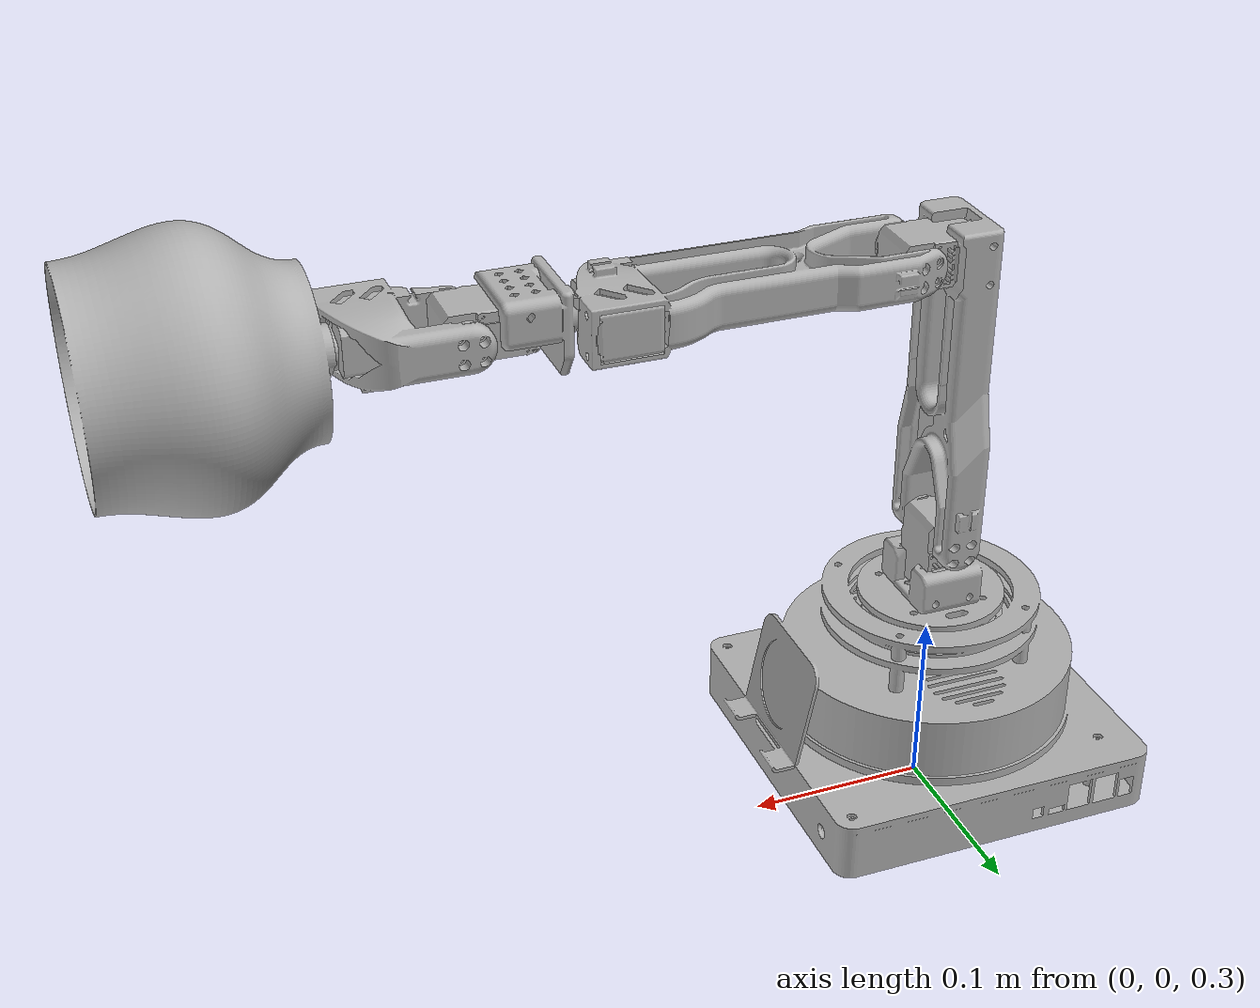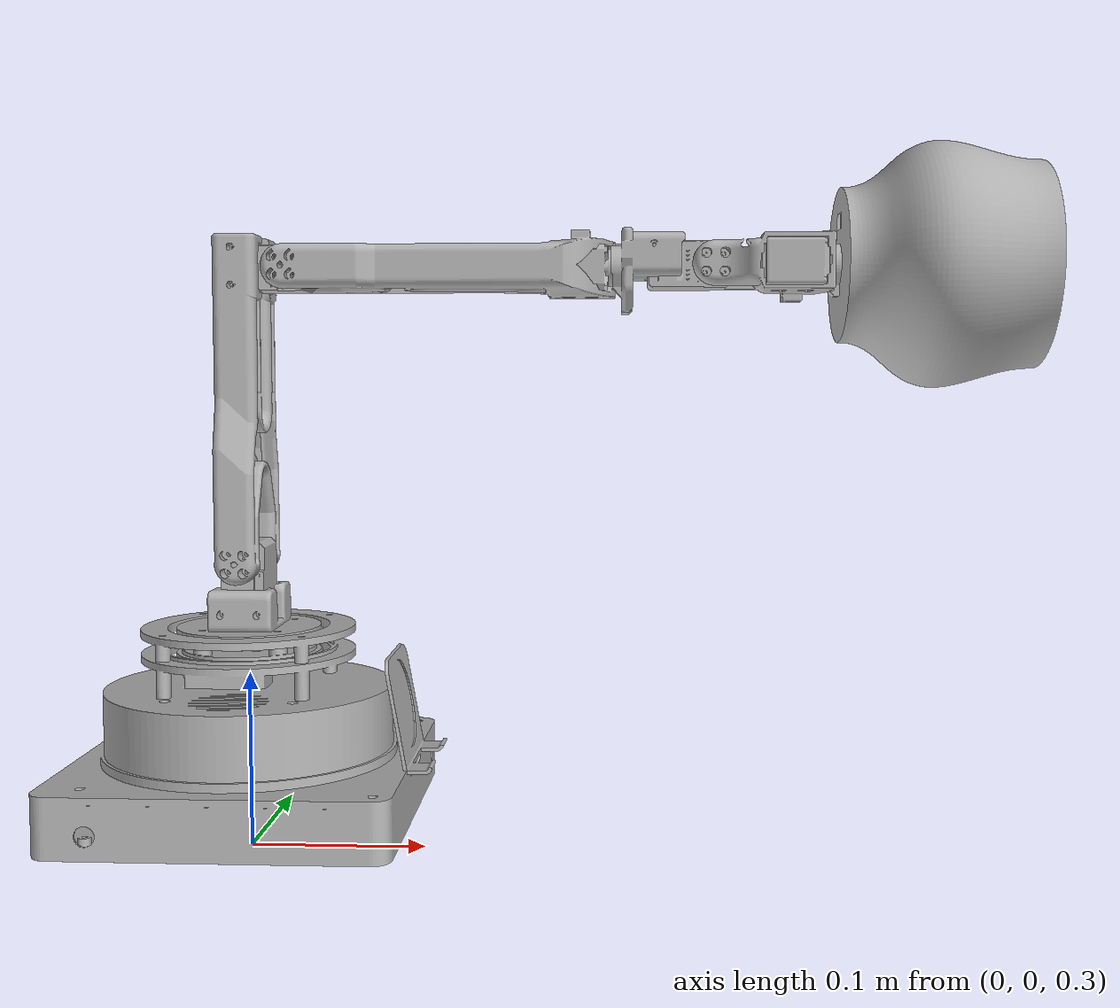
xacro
<?xml version="1.0" ?>
<robot name="my_arm" xmlns:xacro="http://www.ros.org/wiki/xacro">

  <xacro:include filename="$(find my_arm_description)/urdf/gazebo/my_arm.gazebo" />
  <xacro:include filename="$(find my_arm_description)/urdf/control/my_arm.ros2control" />
  <xacro:include filename="$(find my_arm_description)/urdf/core/my_arm.xacro" />
  <xacro:include filename="$(find my_arm_description)/urdf/perception/camera.xacro" />

  <!-- Gazebo ros2_control 插件 -->
  <gazebo>
    <plugin filename="libgz_ros2_control-system.so" name="gz_ros2_control::GazeboSimROS2ControlPlugin">
      <parameters>$(find my_arm_description)/config/gazebo_control/controllers.yaml</parameters>
      <ros>
        <remapping>/robot_description:=/robot_description</remapping>
      </ros>
      <position_proportional_gain>500.0</position_proportional_gain>
    </plugin>
  </gazebo>

  <!-- 在末端添加相机 -->
  <xacro:add_camera parent_link="lamp_link_1" xyz="0.01 0.0 0.005" rpy="0 0 0"/>

</robot>

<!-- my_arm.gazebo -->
<robot name="my_arm" xmlns:xacro="http://www.ros.org/wiki/xacro" >

<xacro:property name="body_color" value="Gazebo/Silver" />

<gazebo reference="base_link">
  <material>${body_color}</material>
  <mu1>0.2</mu1>
  <mu2>0.2</mu2>
  <self_collide>true</self_collide>
  <gravity>true</gravity>
</gazebo>

<gazebo reference="arm_1_link_1">
  <material>${body_color}</material>
  <mu1>0.2</mu1>
  <mu2>0.2</mu2>
  <self_collide>true</self_collide>
</gazebo>

<gazebo reference="servo_3_link_1">
  <material>${body_color}</material>
  <mu1>0.2</mu1>
  <mu2>0.2</mu2>
  <self_collide>true</self_collide>
</gazebo>

<gazebo reference="arm_3_link_1">
  <material>${body_color}</material>
  <mu1>0.2</mu1>
  <mu2>0.2</mu2>
  <self_collide>true</self_collide>
</gazebo>

<gazebo reference="servo_4_link_1">
  <material>${body_color}</material>
  <mu1>0.2</mu1>
  <mu2>0.2</mu2>
  <self_collide>true</self_collide>
</gazebo>

<gazebo reference="arm_4_link_1">
  <material>${body_color}</material>
  <mu1>0.2</mu1>
  <mu2>0.2</mu2>
  <self_collide>true</self_collide>
</gazebo>

<gazebo reference="servo_5_link_1">
  <material>${body_color}</material>
  <mu1>0.2</mu1>
  <mu2>0.2</mu2>
  <self_collide>true</self_collide>
</gazebo>

<gazebo reference="arm_5_link_1">
  <material>${body_color}</material>
  <mu1>0.2</mu1>
  <mu2>0.2</mu2>
  <self_collide>true</self_collide>
</gazebo>

<gazebo reference="servo_6_link_1">
  <material>${body_color}</material>
  <mu1>0.2</mu1>
  <mu2>0.2</mu2>
  <self_collide>true</self_collide>
</gazebo>

<gazebo reference="lamp_link_1">
  <material>${body_color}</material>
  <mu1>0.2</mu1>
  <mu2>0.2</mu2>
  <self_collide>true</self_collide>
</gazebo>

<gazebo reference="servo_2_link_2">
  <material>${body_color}</material>
  <mu1>0.2</mu1>
  <mu2>0.2</mu2>
  <self_collide>true</self_collide>
</gazebo>

<gazebo reference="arm_2_link_1">
  <material>${body_color}</material>
  <mu1>0.2</mu1>
  <mu2>0.2</mu2>
  <self_collide>true</self_collide>
</gazebo>

</robot>

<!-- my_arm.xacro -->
<robot name="my_arm" xmlns:xacro="http://www.ros.org/wiki/xacro">
<xacro:include filename="$(find my_arm_description)/urdf/core/materials.xacro" />
<!-- ========== 虚拟基座 ========== -->
<link name="world"/>

<joint name="base_to_world" type="fixed">
  <parent link="world"/>
  <child link="base_link"/>
  <origin xyz="0 0 0.32" rpy="0 0 0"/>
</joint>

<link name="base_link">
  <inertial>
    <origin xyz="0.0008464787530113904 -0.0002376902938994468 0.04677602289512804" rpy="0 0 0"/>
    <mass value="2.9601256922876837"/>
    <inertia ixx="0.011312" iyy="0.011909" izz="0.017539" ixy="-4e-05" iyz="-2.8e-05" ixz="7.4e-05"/>
  </inertial>
  <visual>
    <origin xyz="0 0 0" rpy="0 0 0"/>
    <geometry>
      <mesh filename="file:///home/lai/Desktop/ros2_ws/src/my_arm_description/meshes/base_link.stl" scale="0.001 0.001 0.001"/>
    </geometry>
    <material name="silver"/>
  </visual>
  <collision>
    <origin xyz="0 0 0" rpy="0 0 0"/>
    <geometry>
      <mesh filename="file:///home/lai/Desktop/ros2_ws/src/my_arm_description/meshes/base_link.stl" scale="0.001 0.001 0.001"/>
    </geometry>
  </collision>
</link>

<link name="arm_1_link_1">
  <inertial>
    <origin xyz="0.012623151298250049 -0.0003158130747682431 -0.07225102113341529" rpy="0 0 0"/>
    <mass value="0.48146371205984473"/>
    <inertia ixx="0.000245" iyy="0.000219" izz="0.000347" ixy="-0.0" iyz="1e-06" ixz="-1e-06"/>
  </inertial>
  <visual>
    <origin xyz="0.01251 0.0001 -0.17696" rpy="0 0 0"/>
    <geometry>
      <mesh filename="file:///home/lai/Desktop/ros2_ws/src/my_arm_description/meshes/arm_1_link_1.stl" scale="0.001 0.001 0.001"/>
    </geometry>
    <material name="silver"/>
  </visual>
  <collision>
    <origin xyz="0.01251 0.0001 -0.17696" rpy="0 0 0"/>
    <geometry>
      <mesh filename="file:///home/lai/Desktop/ros2_ws/src/my_arm_description/meshes/arm_1_link_1.stl" scale="0.001 0.001 0.001"/>
    </geometry>
  </collision>
</link>

<link name="servo_3_link_1">
  <inertial>
    <origin xyz="0.02239902764015798 -0.00012706497809415707 -2.1755726442584944e-08" rpy="0 0 0"/>
    <mass value="0.2843033821982282"/>
    <inertia ixx="4e-05" iyy="6.2e-05" izz="7.3e-05" ixy="1e-06" iyz="-0.0" ixz="0.0"/>
  </inertial>
  <visual>
    <origin xyz="0.0072 0.0008 -0.3086" rpy="0 0 0"/>
    <geometry>
      <mesh filename="file:///home/lai/Desktop/ros2_ws/src/my_arm_description/meshes/servo_3_link_1.stl" scale="0.001 0.001 0.001"/>
    </geometry>
    <material name="silver"/>
  </visual>
  <collision>
    <origin xyz="0.0072 0.0008 -0.3086" rpy="0 0 0"/>
    <geometry>
      <mesh filename="file:///home/lai/Desktop/ros2_ws/src/my_arm_description/meshes/servo_3_link_1.stl" scale="0.001 0.001 0.001"/>
    </geometry>
  </collision>
</link>

<link name="arm_3_link_1">
  <inertial>
    <origin xyz="0.09160800621927975 -0.018527194341208024 0.00017998424453308237" rpy="0 0 0"/>
    <mass value="0.8614146702314018"/>
    <inertia ixx="0.000403" iyy="0.00217" izz="0.002485" ixy="-8.3e-05" iyz="-0.0" ixz="-8e-06"/>
  </inertial>
  <visual>
    <origin xyz="-0.028 -0.0175 -0.3086" rpy="0 0 0"/>
    <geometry>
      <mesh filename="file:///home/lai/Desktop/ros2_ws/src/my_arm_description/meshes/arm_3_link_1.stl" scale="0.001 0.001 0.001"/>
    </geometry>
    <material name="silver"/>
  </visual>
  <collision>
    <origin xyz="-0.028 -0.0175 -0.3086" rpy="0 0 0"/>
    <geometry>
      <mesh filename="file:///home/lai/Desktop/ros2_ws/src/my_arm_description/meshes/arm_3_link_1.stl" scale="0.001 0.001 0.001"/>
    </geometry>
  </collision>
</link>

<link name="servo_4_link_1">
  <inertial>
    <origin xyz="0.33571890838818963 -0.17555726528762458 0.012433978227253617" rpy="0 0 0"/>
    <mass value="0.2843033821982282"/>
    <inertia ixx="6.2e-05" iyy="4e-05" izz="7.3e-05" ixy="1e-06" iyz="0.0" ixz="-0.0"/>
  </inertial>
  <visual>
    <origin xyz="0.1481 -0.186792 -0.296366" rpy="0 0 0"/>
    <geometry>
      <mesh filename="file:///home/lai/Desktop/ros2_ws/src/my_arm_description/meshes/servo_4_link_1.stl" scale="0.001 0.001 0.001"/>
    </geometry>
    <material name="silver"/>
  </visual>
  <collision>
    <origin xyz="0.1481 -0.186792 -0.296366" rpy="0 0 0"/>
    <geometry>
      <mesh filename="file:///home/lai/Desktop/ros2_ws/src/my_arm_description/meshes/servo_4_link_1.stl" scale="0.001 0.001 0.001"/>
    </geometry>
  </collision>
</link>

<link name="arm_4_link_1">
  <inertial>
    <origin xyz="0.01526866733342841 0.0001623881743855718 0.00357138406986951" rpy="0 0 0"/>
    <mass value="0.20631364283305076"/>
    <inertia ixx="7.2e-05" iyy="4.6e-05" izz="6.7e-05" ixy="-2e-06" iyz="0.0" ixz="-9e-06"/>
  </inertial>
  <visual>
    <origin xyz="-0.206192 0.001566 -0.3088" rpy="0 0 0"/>
    <geometry>
      <mesh filename="file:///home/lai/Desktop/ros2_ws/src/my_arm_description/meshes/arm_4_link_1.stl" scale="0.001 0.001 0.001"/>
    </geometry>
    <material name="silver"/>
  </visual>
  <collision>
    <origin xyz="-0.206192 0.001566 -0.3088" rpy="0 0 0"/>
    <geometry>
      <mesh filename="file:///home/lai/Desktop/ros2_ws/src/my_arm_description/meshes/arm_4_link_1.stl" scale="0.001 0.001 0.001"/>
    </geometry>
  </collision>
</link>

<link name="servo_5_link_1">
  <inertial>
    <origin xyz="0.40934087105025296 -0.3223849498003535 -0.03508338265137656" rpy="0 0 0"/>
    <mass value="0.2843033821982282"/>
    <inertia ixx="4e-05" iyy="6.2e-05" izz="7.3e-05" ixy="-1e-06" iyz="-0.0" ixz="-0.0"/>
  </inertial>
  <visual>
    <origin xyz="0.16135 -0.320395 -0.344695" rpy="0 0 0"/>
    <geometry>
      <mesh filename="file:///home/lai/Desktop/ros2_ws/src/my_arm_description/meshes/servo_5_link_1.stl" scale="0.001 0.001 0.001"/>
    </geometry>
    <material name="silver"/>
  </visual>
  <collision>
    <origin xyz="0.16135 -0.320395 -0.344695" rpy="0 0 0"/>
    <geometry>
      <mesh filename="file:///home/lai/Desktop/ros2_ws/src/my_arm_description/meshes/servo_5_link_1.stl" scale="0.001 0.001 0.001"/>
    </geometry>
  </collision>
</link>

<link name="arm_5_link_1">
  <inertial>
    <origin xyz="0.027081086101920337 0.018331488424965195 -0.00038902637770105164" rpy="0 0 0"/>
    <mass value="0.2536556216496754"/>
    <inertia ixx="0.000132" iyy="0.000112" izz="0.000197" ixy="1.5e-05" iyz="-0.0" ixz="1e-06"/>
  </inertial>
  <visual>
    <origin xyz="-0.260792 0.020417 -0.309612" rpy="0 0 0"/>
    <geometry>
      <mesh filename="file:///home/lai/Desktop/ros2_ws/src/my_arm_description/meshes/arm_5_link_1.stl" scale="0.001 0.001 0.001"/>
    </geometry>
    <material name="silver"/>
  </visual>
  <collision>
    <origin xyz="-0.260792 0.020417 -0.309612" rpy="0 0 0"/>
    <geometry>
      <mesh filename="file:///home/lai/Desktop/ros2_ws/src/my_arm_description/meshes/arm_5_link_1.stl" scale="0.001 0.001 0.001"/>
    </geometry>
  </collision>
</link>

<link name="servo_6_link_1">
  <inertial>
    <origin xyz="0.33679400602412535 0.29104852781360147 0.014250617365778373" rpy="0 0 0"/>
    <mass value="0.2799142513209256"/>
    <inertia ixx="6.1e-05" iyy="3.8e-05" izz="7.1e-05" ixy="-2e-06" iyz="0.0" ixz="0.0"/>
  </inertial>
  <visual>
    <origin xyz="0.03322 0.304301 -0.295361" rpy="0 0 0"/>
    <geometry>
      <mesh filename="file:///home/lai/Desktop/ros2_ws/src/my_arm_description/meshes/servo_6_link_1.stl" scale="0.001 0.001 0.001"/>
    </geometry>
    <material name="silver"/>
  </visual>
  <collision>
    <origin xyz="0.03322 0.304301 -0.295361" rpy="0 0 0"/>
    <geometry>
      <mesh filename="file:///home/lai/Desktop/ros2_ws/src/my_arm_description/meshes/servo_6_link_1.stl" scale="0.001 0.001 0.001"/>
    </geometry>
  </collision>
</link>

<link name="lamp_link_1">
  <inertial>
    <origin xyz="0.04826812168887329 5.783412169857579e-07 -0.00018087533128824385" rpy="0 0 0"/>
    <mass value="0.42653519033217124"/>
    <inertia ixx="0.001163" iyy="0.001081" izz="0.001082" ixy="-0.0" iyz="-0.0" ixz="-3e-06"/>
  </inertial>
  <visual>
    <origin xyz="-0.321884 0.000251 -0.309612" rpy="0 0 0"/>
    <geometry>
      <mesh filename="file:///home/lai/Desktop/ros2_ws/src/my_arm_description/meshes/lamp_link_1.stl" scale="0.001 0.001 0.001"/>
    </geometry>
    <material name="silver"/>
  </visual>
  <collision>
    <origin xyz="-0.321884 0.000251 -0.309612" rpy="0 0 0"/>
    <geometry>
      <mesh filename="file:///home/lai/Desktop/ros2_ws/src/my_arm_description/meshes/lamp_link_1.stl" scale="0.001 0.001 0.001"/>
    </geometry>
  </collision>
</link>

<link name="servo_2_link_2">
  <inertial>
    <origin xyz="-0.21322000000851132 0.00037293502190464045 -0.031080972359841613" rpy="0 0 0"/>
    <mass value="0.2843033821982282"/>
    <inertia ixx="7.3e-05" iyy="6.2e-05" izz="4e-05" ixy="0.0" iyz="1e-06" ixz="-0.0"/>
  </inertial>
  <visual>
    <origin xyz="-0.21322 -0.00015 -0.16471" rpy="0 0 0"/>
    <geometry>
      <mesh filename="file:///home/lai/Desktop/ros2_ws/src/my_arm_description/meshes/servo_2_link_2.stl" scale="0.001 0.001 0.001"/>
    </geometry>
    <material name="silver"/>
  </visual>
  <collision>
    <origin xyz="-0.21322 -0.00015 -0.16471" rpy="0 0 0"/>
    <geometry>
      <mesh filename="file:///home/lai/Desktop/ros2_ws/src/my_arm_description/meshes/servo_2_link_2.stl" scale="0.001 0.001 0.001"/>
    </geometry>
  </collision>
</link>

<link name="arm_2_link_1">
  <inertial>
    <origin xyz="-0.0005037320295196879 -0.019702687953788513 0.09061320010830545" rpy="0 0 0"/>
    <mass value="0.8306265623311895"/>
    <inertia ixx="0.002713" iyy="0.002421" izz="0.000355" ixy="1e-06" iyz="1.7e-05" ixz="2.6e-05"/>
  </inertial>
  <visual>
    <origin xyz="0.0 -0.01895 -0.14643" rpy="0 0 0"/>
    <geometry>
      <mesh filename="file:///home/lai/Desktop/ros2_ws/src/my_arm_description/meshes/arm_2_link_1.stl" scale="0.001 0.001 0.001"/>
    </geometry>
    <material name="silver"/>
  </visual>
  <collision>
    <origin xyz="0.0 -0.01895 -0.14643" rpy="0 0 0"/>
    <geometry>
      <mesh filename="file:///home/lai/Desktop/ros2_ws/src/my_arm_description/meshes/arm_2_link_1.stl" scale="0.001 0.001 0.001"/>
    </geometry>
  </collision>
</link>

<joint name="l1" type="revolute">
  <origin xyz="-0.01251 -0.0001 0.17696" rpy="0 0 0"/>
  <parent link="base_link"/>
  <child link="arm_1_link_1"/>
  <axis xyz="-0.0 0.0 1.0"/>
  <limit upper="1.570796" lower="-1.570796" effort="100" velocity="100"/>
</joint>

<joint name="s3" type="fixed">
  <origin xyz="-0.0072 -0.01975 0.16217" rpy="0 0 0"/>
  <parent link="arm_2_link_1"/>
  <child link="servo_3_link_1"/>
</joint>

<joint name="l3" type="revolute">
  <origin xyz="0.0352 0.0183 0.0" rpy="0 0 0"/>
  <parent link="servo_3_link_1"/>
  <child link="arm_3_link_1"/>
  <axis xyz="0.0 -1.0 0.0"/>
  <limit upper="1.570796" lower="-1.570796" effort="100" velocity="100"/>
</joint>

<joint name="s4" type="fixed">
  <origin xyz="-0.1761 0.169292 -0.012234" rpy="0 0 0"/>
  <parent link="arm_3_link_1"/>
  <child link="servo_4_link_1"/>
</joint>

<joint name="l4" type="revolute">
  <origin xyz="0.354292 -0.188358 0.012434" rpy="0 0 0"/>
  <parent link="servo_4_link_1"/>
  <child link="arm_4_link_1"/>
  <axis xyz="1.0 0.0 0.0"/>
  <limit upper="1.570796" lower="-1.570796" effort="100" velocity="100"/>
</joint>

<joint name="s5" type="fixed">
  <origin xyz="-0.367542 0.321961 0.035895" rpy="0 0 0"/>
  <parent link="arm_4_link_1"/>
  <child link="servo_5_link_1"/>
</joint>

<joint name="l5" type="revolute">
  <origin xyz="0.422142 -0.340812 -0.035083" rpy="0 0 0"/>
  <parent link="servo_5_link_1"/>
  <child link="arm_5_link_1"/>
  <axis xyz="0.0 1.0 0.0"/>
  <limit upper="1.570796" lower="-1.570796" effort="100" velocity="100"/>
</joint>

<joint name="s6" type="fixed">
  <origin xyz="-0.294012 -0.283884 -0.014251" rpy="0 0 0"/>
  <parent link="arm_5_link_1"/>
  <child link="servo_6_link_1"/>
</joint>

<joint name="l6" type="revolute">
  <origin xyz="0.355104 0.30405 0.014251" rpy="0 0 0"/>
  <parent link="servo_6_link_1"/>
  <child link="lamp_link_1"/>
  <axis xyz="1.0 0.0 0.0"/>
  <limit upper="1.570796" lower="-1.570796" effort="100" velocity="100"/>
</joint>

<joint name="s1" type="fixed">
  <origin xyz="0.22573 0.00025 -0.01225" rpy="0 0 0"/>
  <parent link="arm_1_link_1"/>
  <child link="servo_2_link_2"/>
</joint>

<joint name="l2" type="revolute">
  <origin xyz="-0.21322 0.0188 -0.01828" rpy="0 0 0"/>
  <parent link="servo_2_link_2"/>
  <child link="arm_2_link_1"/>
  <axis xyz="0.0 -1.0 0.0"/>
  <limit upper="1.570796" lower="-1.570796" effort="100" velocity="100"/>
</joint>

</robot>

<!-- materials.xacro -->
<robot name="my_arm" xmlns:xacro="http://www.ros.org/wiki/xacro" >

<material name="silver">
  <color rgba="0.700 0.700 0.700 1.000"/>
</material>

</robot>

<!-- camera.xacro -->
<robot xmlns:xacro="http://www.ros.org/wiki/xacro">

  <xacro:macro name="add_camera" params="parent_link xyz rpy">
    <!-- 相机关节 -->
    <joint name="camera_joint" type="fixed">
      <parent link="${parent_link}"/>
      <child link="camera_link"/>
      <origin xyz="${xyz}" rpy="${rpy}"/>
    </joint>

    <!-- 相机连杆 -->
    <link name="camera_link">
      <inertial>
        <mass value="0.01"/>
        <inertia ixx="1e-6" ixy="0" ixz="0" iyy="1e-6" iyz="0" izz="1e-6"/>
      </inertial>
    </link>

    <!-- 光学坐标系（ROS 约定） -->
    <joint name="camera_optical_joint" type="fixed">
      <parent link="camera_link"/>
      <child link="camera_optical_frame"/>
      <origin xyz="0 0 0" rpy="-1.5708 0 -1.5708"/>
    </joint>

    <link name="camera_optical_frame"/>

    <!-- 相机传感器 -->
    <gazebo reference="camera_link">
      <sensor name="camera_sensor" type="camera">
        <pose>0 0 0 0 0 0</pose>
        <topic>/camera/image_raw</topic>
        <update_rate>30</update_rate>
        <camera>
          <horizontal_fov>1.5708</horizontal_fov>
          <image>
            <width>640</width>
            <height>480</height>
          </image>
          <clip>
            <near>0.01</near>
            <far>100</far>
          </clip>
        </camera>
      </sensor>
    </gazebo>

    <!-- 传感器系统插件（根据文档的正确写法） -->
    <gazebo>
      <plugin filename="gz-sim-sensors-system" name="gz::sim::systems::Sensors">
        <render_engine>ogre2</render_engine>
      </plugin>
    </gazebo>

  </xacro:macro>

</robot>
